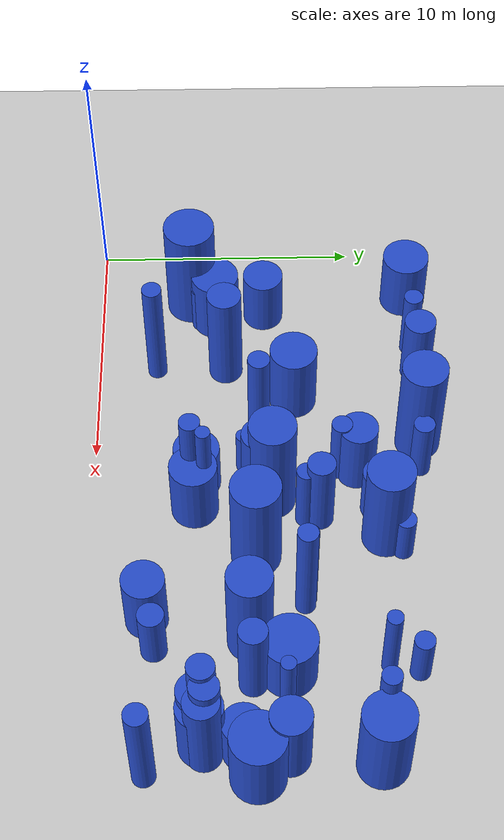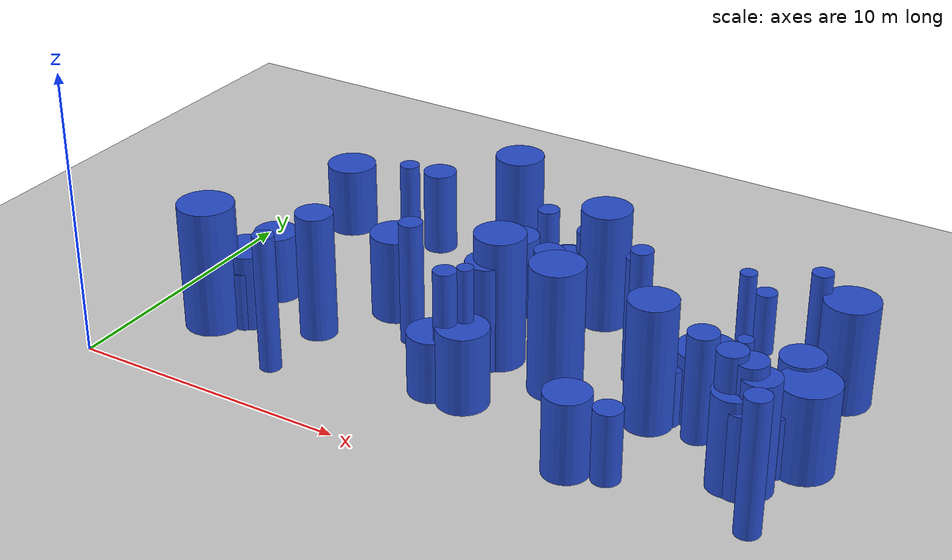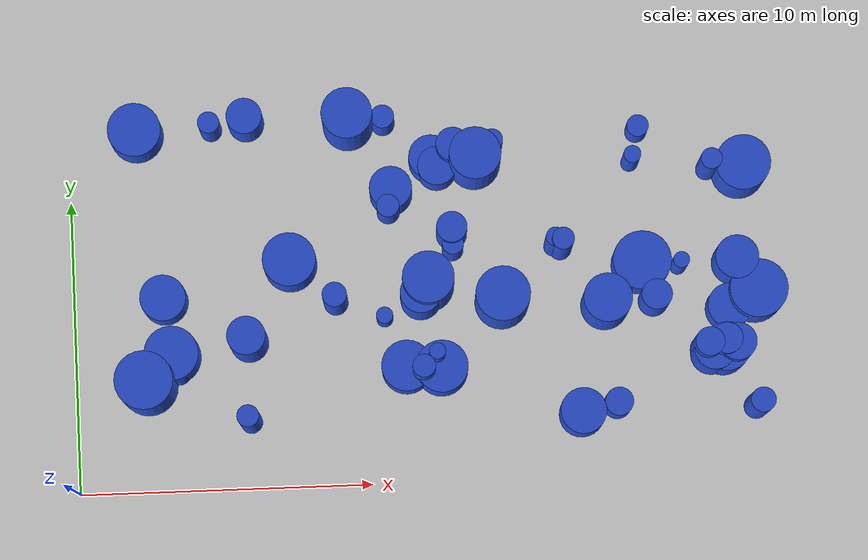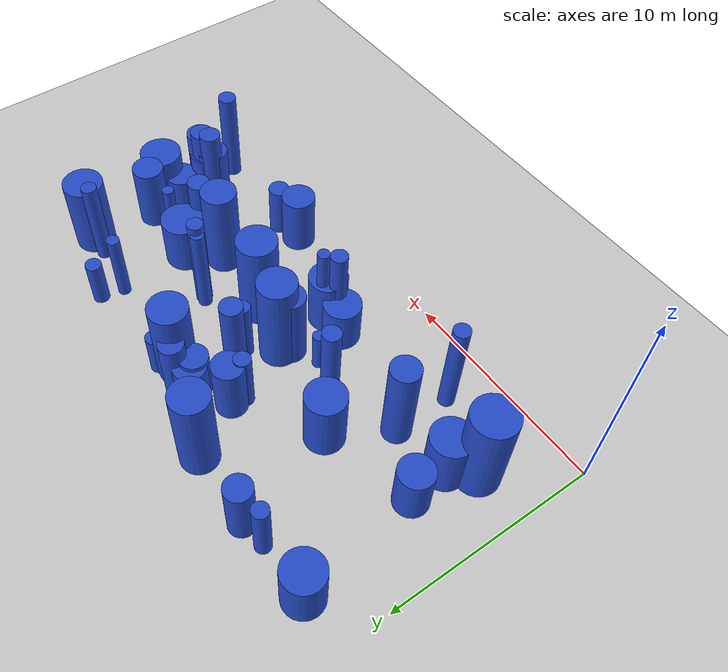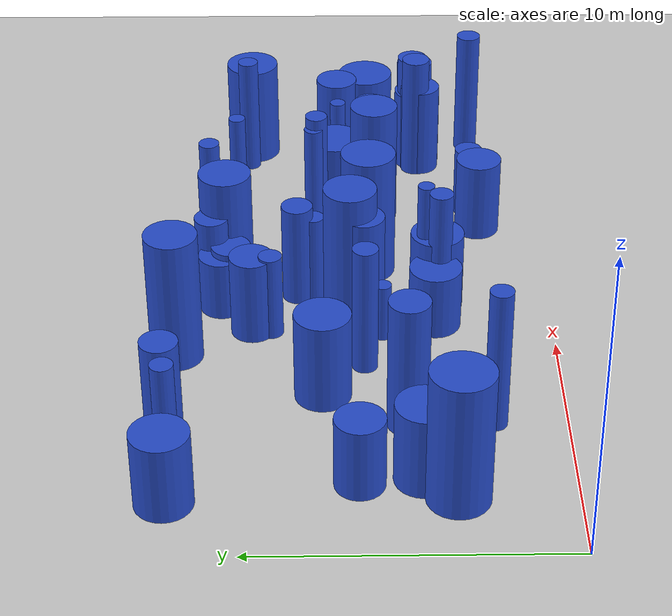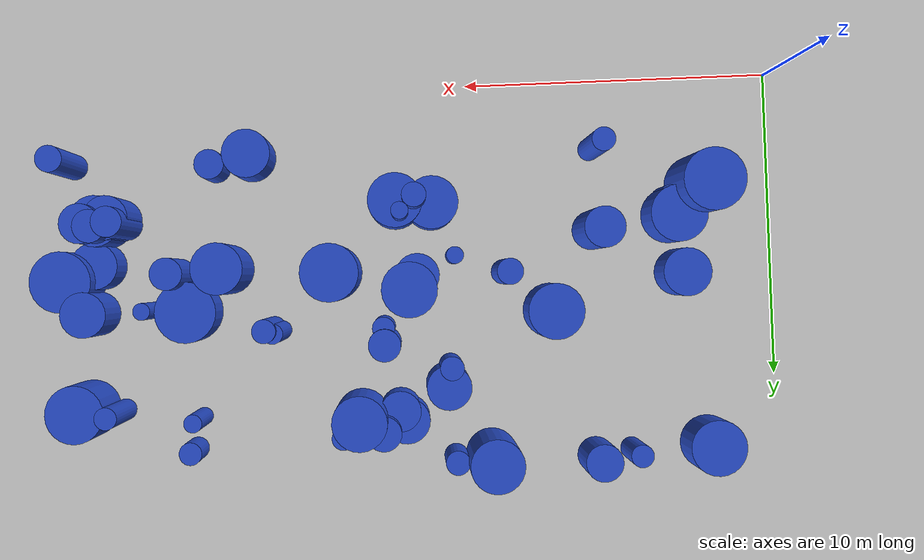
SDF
<sdf version="1.6">
 <world name="default">
  <model name="ground_plane">
   <static>1</static>
   <link name="link">
    <collision name="collision">
     <geometry><plane><normal>0 0 1</normal><size>100 100</size></plane></geometry>
     <surface><friction><ode><mu>100</mu><mu2>50</mu2></ode></friction></surface>
    </collision>
    <visual name="visual">
     <cast_shadows>0</cast_shadows>
     <geometry><plane><normal>0 0 1</normal><size>100 100</size></plane></geometry>
     <material>
      <script><uri>file://media/materials/scripts/gazebo.material</uri><name>Gazebo/Grey</name></script>
     </material>
    </visual>
   </link>
  </model>
  <model name="2">
   <static>0</static>
   <link name="link">
    <inertial>
     <mass>2</mass>
     <inertia><ixx>3.7496</ixx><ixy>0</ixy><ixz>0</ixz><iyy>3.7496</iyy><iyz>0</iyz><izz>0.179017</izz></inertia>
    </inertial>
    <collision name="collision">
     <geometry><cylinder><length>4.68621</length><radius>0.423104</radius></cylinder></geometry>
     <surface><contact><collide_without_contact>1</collide_without_contact></contact></surface>
    </collision>
    <visual name="visual">
     <geometry><cylinder><length>4.68621</length><radius>0.423104</radius></cylinder></geometry>
     <material>
      <script><uri>file://media/materials/scripts/gazebo.material</uri><name>Gazebo/Blue</name></script>
     </material>
    </visual>
    <gravity>0</gravity>
   </link>
   <pose>23.1867 2.18453 2.3431 0 -0 0</pose>
  </model>
  <model name="4">
   <static>0</static>
   <link name="link">
    <inertial>
     <mass>2</mass>
     <inertia>
      <ixx>0.784851</ixx>
      <ixy>0</ixy>
      <ixz>0</ixz>
      <iyy>0.784851</iyy>
      <iyz>0</iyz>
      <izz>0.196081</izz>
     </inertia>
    </inertial>
    <collision name="collision">
     <geometry><cylinder><length>2.02999</length><radius>0.442811</radius></cylinder></geometry>
     <surface><contact><collide_without_contact>1</collide_without_contact></contact></surface>
    </collision>
    <visual name="visual">
     <geometry><cylinder><length>2.02999</length><radius>0.442811</radius></cylinder></geometry>
     <material>
      <script><uri>file://media/materials/scripts/gazebo.material</uri><name>Gazebo/Blue</name></script>
     </material>
    </visual>
    <gravity>0</gravity>
   </link>
   <pose>22.4216 3.87466 1.015 0 -0 0</pose>
  </model>
  <model name="8">
   <static>0</static>
   <link name="link">
    <inertial>
     <mass>2</mass>
     <inertia>
      <ixx>0.936811</ixx>
      <ixy>0</ixy>
      <ixz>0</ixz>
      <iyy>0.936811</iyy>
      <iyz>0</iyz>
      <izz>0.138882</izz>
     </inertia>
    </inertial>
    <collision name="collision">
     <geometry><cylinder><length>2.28128</length><radius>0.372668</radius></cylinder></geometry>
     <surface><contact><collide_without_contact>1</collide_without_contact></contact></surface>
    </collision>
    <visual name="visual">
     <geometry><cylinder><length>2.28128</length><radius>0.372668</radius></cylinder></geometry>
     <material>
      <script><uri>file://media/materials/scripts/gazebo.material</uri><name>Gazebo/Blue</name></script>
     </material>
    </visual>
    <gravity>0</gravity>
   </link>
   <pose>19.4248 11.7611 1.14064 0 -0 0</pose>
  </model>
  <model name="14">
   <static>0</static>
   <link name="link">
    <inertial>
     <mass>2</mass>
     <inertia><ixx>1.37401</ixx><ixy>0</ixy><ixz>0</ixz><iyy>1.37401</iyy><iyz>0</iyz><izz>0.143411</izz></inertia>
    </inertial>
    <collision name="collision">
     <geometry><cylinder><length>2.79532</length><radius>0.378697</radius></cylinder></geometry>
     <surface><contact><collide_without_contact>1</collide_without_contact></contact></surface>
    </collision>
    <visual name="visual">
     <geometry><cylinder><length>2.79532</length><radius>0.378697</radius></cylinder></geometry>
     <material>
      <script><uri>file://media/materials/scripts/gazebo.material</uri><name>Gazebo/Blue</name></script>
     </material>
    </visual>
    <gravity>0</gravity>
   </link>
   <pose>23.7113 6.20723 1.39766 0 -0 0</pose>
  </model>
  <model name="30">
   <static>0</static>
   <link name="link">
    <inertial>
     <mass>2</mass>
     <inertia><ixx>3.44762</ixx><ixy>0</ixy><ixz>0</ixz><iyy>3.44762</iyy><iyz>0</iyz><izz>0.103691</izz></inertia>
    </inertial>
    <collision name="collision">
     <geometry><cylinder><length>4.51383</length><radius>0.322011</radius></cylinder></geometry>
     <surface><contact><collide_without_contact>1</collide_without_contact></contact></surface>
    </collision>
    <visual name="visual">
     <geometry><cylinder><length>4.51383</length><radius>0.322011</radius></cylinder></geometry>
     <material>
      <script><uri>file://media/materials/scripts/gazebo.material</uri><name>Gazebo/Blue</name></script>
     </material>
    </visual>
    <gravity>0</gravity>
   </link>
   <pose>16.4467 7.91767 2.25692 0 -0 0</pose>
  </model>
  <model name="39">
   <static>0</static>
   <link name="link">
    <inertial>
     <mass>2</mass>
     <inertia><ixx>2.1303</ixx><ixy>0</ixy><ixz>0</ixz><iyy>2.1303</iyy><iyz>0</iyz><izz>0.504175</izz></inertia>
    </inertial>
    <collision name="collision">
     <geometry><cylinder><length>3.35697</length><radius>0.710052</radius></cylinder></geometry>
     <surface><contact><collide_without_contact>1</collide_without_contact></contact></surface>
    </collision>
    <visual name="visual">
     <geometry><cylinder><length>3.35697</length><radius>0.710052</radius></cylinder></geometry>
     <material>
      <script><uri>file://media/materials/scripts/gazebo.material</uri><name>Gazebo/Blue</name></script>
     </material>
    </visual>
    <gravity>0</gravity>
   </link>
   <pose>21.7132 4.03501 1.67849 0 -0 0</pose>
  </model>
  <model name="52">
   <static>0</static>
   <link name="link">
    <inertial>
     <mass>2</mass>
     <inertia><ixx>1.9861</ixx><ixy>0</ixy><ixz>0</ixz><iyy>1.9861</iyy><iyz>0</iyz><izz>0.542401</izz></inertia>
    </inertial>
    <collision name="collision">
     <geometry><cylinder><length>3.20771</length><radius>0.736479</radius></cylinder></geometry>
     <surface><contact><collide_without_contact>1</collide_without_contact></contact></surface>
    </collision>
    <visual name="visual">
     <geometry><cylinder><length>3.20771</length><radius>0.736479</radius></cylinder></geometry>
     <material>
      <script><uri>file://media/materials/scripts/gazebo.material</uri><name>Gazebo/Blue</name></script>
     </material>
    </visual>
    <gravity>0</gravity>
   </link>
   <pose>22.5768 7.11732 1.60386 0 -0 0</pose>
  </model>
  <model name="54">
   <static>0</static>
   <link name="link">
    <inertial>
     <mass>2</mass>
     <inertia>
      <ixx>0.855605</ixx>
      <ixy>0</ixy>
      <ixz>0</ixz>
      <iyy>0.855605</iyy>
      <iyz>0</iyz>
      <izz>0.167054</izz>
     </inertia>
    </inertial>
    <collision name="collision">
     <geometry><cylinder><length>2.15232</length><radius>0.408722</radius></cylinder></geometry>
     <surface><contact><collide_without_contact>1</collide_without_contact></contact></surface>
    </collision>
    <visual name="visual">
     <geometry><cylinder><length>2.15232</length><radius>0.408722</radius></cylinder></geometry>
     <material>
      <script><uri>file://media/materials/scripts/gazebo.material</uri><name>Gazebo/Blue</name></script>
     </material>
    </visual>
    <gravity>0</gravity>
   </link>
   <pose>3.50927 4.04848 1.07616 0 -0 0</pose>
  </model>
  <model name="56">
   <static>0</static>
   <link name="link">
    <inertial>
     <mass>2</mass>
     <inertia><ixx>3.96337</ixx><ixy>0</ixy><ixz>0</ixz><iyy>3.96337</iyy><iyz>0</iyz><izz>0.741021</izz></inertia>
    </inertial>
    <collision name="collision">
     <geometry><cylinder><length>4.64297</length><radius>0.860826</radius></cylinder></geometry>
     <surface><contact><collide_without_contact>1</collide_without_contact></contact></surface>
    </collision>
    <visual name="visual">
     <geometry><cylinder><length>4.64297</length><radius>0.860826</radius></cylinder></geometry>
     <material>
      <script><uri>file://media/materials/scripts/gazebo.material</uri><name>Gazebo/Blue</name></script>
     </material>
    </visual>
    <gravity>0</gravity>
   </link>
   <pose>9.58124 12.331 2.32149 0 -0 0</pose>
  </model>
  <model name="81">
   <static>0</static>
   <link name="link">
    <inertial>
     <mass>2</mass>
     <inertia><ixx>2.74723</ixx><ixy>0</ixy><ixz>0</ixz><iyy>2.74723</iyy><iyz>0</iyz><izz>0.869014</izz></inertia>
    </inertial>
    <collision name="collision">
     <geometry><cylinder><length>3.72509</length><radius>0.932209</radius></cylinder></geometry>
     <surface><contact><collide_without_contact>1</collide_without_contact></contact></surface>
    </collision>
    <visual name="visual">
     <geometry><cylinder><length>3.72509</length><radius>0.932209</radius></cylinder></geometry>
     <material>
      <script><uri>file://media/materials/scripts/gazebo.material</uri><name>Gazebo/Blue</name></script>
     </material>
    </visual>
    <gravity>0</gravity>
   </link>
   <pose>22.8803 10.2598 1.86255 0 -0 0</pose>
  </model>
  <model name="83">
   <static>0</static>
   <link name="link">
    <inertial>
     <mass>2</mass>
     <inertia><ixx>1.69403</ixx><ixy>0</ixy><ixz>0</ixz><iyy>1.69403</iyy><iyz>0</iyz><izz>0.134634</izz></inertia>
    </inertial>
    <collision name="collision">
     <geometry><cylinder><length>3.12414</length><radius>0.366925</radius></cylinder></geometry>
     <surface><contact><collide_without_contact>1</collide_without_contact></contact></surface>
    </collision>
    <visual name="visual">
     <geometry><cylinder><length>3.12414</length><radius>0.366925</radius></cylinder></geometry>
     <material>
      <script><uri>file://media/materials/scripts/gazebo.material</uri><name>Gazebo/Blue</name></script>
     </material>
    </visual>
    <gravity>0</gravity>
   </link>
   <pose>4.88645 12.3275 1.56207 0 -0 0</pose>
  </model>
  <model name="92">
   <static>0</static>
   <link name="link">
    <inertial>
     <mass>2</mass>
     <inertia><ixx>4.14606</ixx><ixy>0</ixy><ixz>0</ixz><iyy>4.14606</iyy><iyz>0</iyz><izz>0.139804</izz></inertia>
    </inertial>
    <collision name="collision">
     <geometry><cylinder><length>4.9454</length><radius>0.373904</radius></cylinder></geometry>
     <surface><contact><collide_without_contact>1</collide_without_contact></contact></surface>
    </collision>
    <visual name="visual">
     <geometry><cylinder><length>4.9454</length><radius>0.373904</radius></cylinder></geometry>
     <material>
      <script><uri>file://media/materials/scripts/gazebo.material</uri><name>Gazebo/Blue</name></script>
     </material>
    </visual>
    <gravity>0</gravity>
   </link>
   <pose>5.92605 2.27303 2.4727 0 -0 0</pose>
  </model>
  <model name="113">
   <static>0</static>
   <link name="link">
    <inertial>
     <mass>2</mass>
     <inertia>
      <ixx>0.757629</ixx>
      <ixy>0</ixy>
      <ixz>0</ixz>
      <iyy>0.757629</iyy>
      <iyz>0</iyz>
      <izz>0.168603</izz>
     </inertia>
    </inertial>
    <collision name="collision">
     <geometry><cylinder><length>2.00997</length><radius>0.410614</radius></cylinder></geometry>
     <surface><contact><collide_without_contact>1</collide_without_contact></contact></surface>
    </collision>
    <visual name="visual">
     <geometry><cylinder><length>2.00997</length><radius>0.410614</radius></cylinder></geometry>
     <material>
      <script><uri>file://media/materials/scripts/gazebo.material</uri><name>Gazebo/Blue</name></script>
     </material>
    </visual>
    <gravity>0</gravity>
   </link>
   <pose>18.6159 6.21219 1.00498 0 -0 0</pose>
  </model>
  <model name="116">
   <static>0</static>
   <link name="link">
    <inertial>
     <mass>2</mass>
     <inertia><ixx>1.82778</ixx><ixy>0</ixy><ixz>0</ixz><iyy>1.82778</iyy><iyz>0</iyz><izz>0.687072</izz></inertia>
    </inertial>
    <collision name="collision">
     <geometry><cylinder><length>2.9842</length><radius>0.828898</radius></cylinder></geometry>
     <surface><contact><collide_without_contact>1</collide_without_contact></contact></surface>
    </collision>
    <visual name="visual">
     <geometry><cylinder><length>2.9842</length><radius>0.828898</radius></cylinder></geometry>
     <material>
      <script><uri>file://media/materials/scripts/gazebo.material</uri><name>Gazebo/Blue</name></script>
     </material>
    </visual>
    <gravity>0</gravity>
   </link>
   <pose>22.1262 4.11813 1.4921 0 -0 0</pose>
  </model>
  <model name="129">
   <static>0</static>
   <link name="link">
    <inertial>
     <mass>2</mass>
     <inertia><ixx>1.71504</ixx><ixy>0</ixy><ixz>0</ixz><iyy>1.71504</iyy><iyz>0</iyz><izz>0.857109</izz></inertia>
    </inertial>
    <collision name="collision">
     <geometry><cylinder><length>2.7783</length><radius>0.925802</radius></cylinder></geometry>
     <surface><contact><collide_without_contact>1</collide_without_contact></contact></surface>
    </collision>
    <visual name="visual">
     <geometry><cylinder><length>2.7783</length><radius>0.925802</radius></cylinder></geometry>
     <material>
      <script><uri>file://media/materials/scripts/gazebo.material</uri><name>Gazebo/Blue</name></script>
     </material>
    </visual>
    <gravity>0</gravity>
   </link>
   <pose>3.35246 4.58719 1.38915 0 -0 0</pose>
  </model>
  <model name="135">
   <static>0</static>
   <link name="link">
    <inertial>
     <mass>2</mass>
     <inertia><ixx>1.19633</ixx><ixy>0</ixy><ixz>0</ixz><iyy>1.19633</iyy><iyz>0</iyz><izz>0.751827</izz></inertia>
    </inertial>
    <collision name="collision">
     <geometry><cylinder><length>2.21867</length><radius>0.867079</radius></cylinder></geometry>
     <surface><contact><collide_without_contact>1</collide_without_contact></contact></surface>
    </collision>
    <visual name="visual">
     <geometry><cylinder><length>2.21867</length><radius>0.867079</radius></cylinder></geometry>
     <material>
      <script><uri>file://media/materials/scripts/gazebo.material</uri><name>Gazebo/Blue</name></script>
     </material>
    </visual>
    <gravity>0</gravity>
   </link>
   <pose>11.3003 3.90964 1.10934 0 -0 0</pose>
  </model>
  <model name="137">
   <static>0</static>
   <link name="link">
    <inertial>
     <mass>2</mass>
     <inertia><ixx>3.97567</ixx><ixy>0</ixy><ixz>0</ixz><iyy>3.97567</iyy><iyz>0</iyz><izz>0.855594</izz></inertia>
    </inertial>
    <collision name="collision">
     <geometry><cylinder><length>4.61381</length><radius>0.924983</radius></cylinder></geometry>
     <surface><contact><collide_without_contact>1</collide_without_contact></contact></surface>
    </collision>
    <visual name="visual">
     <geometry><cylinder><length>4.61381</length><radius>0.924983</radius></cylinder></geometry>
     <material>
      <script><uri>file://media/materials/scripts/gazebo.material</uri><name>Gazebo/Blue</name></script>
     </material>
    </visual>
    <gravity>0</gravity>
   </link>
   <pose>14.6148 6.07332 2.3069 0 -0 0</pose>
  </model>
  <model name="165">
   <static>0</static>
   <link name="link">
    <inertial>
     <mass>2</mass>
     <inertia><ixx>1.52389</ixx><ixy>0</ixy><ixz>0</ixz><iyy>1.52389</iyy><iyz>0</iyz><izz>0.993919</izz></inertia>
    </inertial>
    <collision name="collision">
     <geometry><cylinder><length>2.48225</length><radius>0.996955</radius></cylinder></geometry>
     <surface><contact><collide_without_contact>1</collide_without_contact></contact></surface>
    </collision>
    <visual name="visual">
     <geometry><cylinder><length>2.48225</length><radius>0.996955</radius></cylinder></geometry>
     <material>
      <script><uri>file://media/materials/scripts/gazebo.material</uri><name>Gazebo/Blue</name></script>
     </material>
    </visual>
    <gravity>0</gravity>
   </link>
   <pose>19.3985 7.17138 1.24113 0 -0 0</pose>
  </model>
  <model name="171">
   <static>0</static>
   <link name="link">
    <inertial>
     <mass>2</mass>
     <inertia><ixx>4.13126</ixx><ixy>0</ixy><ixz>0</ixz><iyy>4.13126</iyy><iyz>0</iyz><izz>0.77287</izz></inertia>
    </inertial>
    <collision name="collision">
     <geometry><cylinder><length>4.74014</length><radius>0.87913</radius></cylinder></geometry>
     <surface><contact><collide_without_contact>1</collide_without_contact></contact></surface>
    </collision>
    <visual name="visual">
     <geometry><cylinder><length>4.74014</length><radius>0.87913</radius></cylinder></geometry>
     <material>
      <script><uri>file://media/materials/scripts/gazebo.material</uri><name>Gazebo/Blue</name></script>
     </material>
    </visual>
    <gravity>0</gravity>
   </link>
   <pose>12.1266 6.70582 2.37007 0 -0 0</pose>
  </model>
  <model name="177">
   <static>0</static>
   <link name="link">
    <inertial>
     <mass>2</mass>
     <inertia><ixx>1.69614</ixx><ixy>0</ixy><ixz>0</ixz><iyy>1.69614</iyy><iyz>0</iyz><izz>0.787847</izz></inertia>
    </inertial>
    <collision name="collision">
     <geometry><cylinder><length>2.79523</length><radius>0.887607</radius></cylinder></geometry>
     <surface><contact><collide_without_contact>1</collide_without_contact></contact></surface>
    </collision>
    <visual name="visual">
     <geometry><cylinder><length>2.79523</length><radius>0.887607</radius></cylinder></geometry>
     <material>
      <script><uri>file://media/materials/scripts/gazebo.material</uri><name>Gazebo/Blue</name></script>
     </material>
    </visual>
    <gravity>0</gravity>
   </link>
   <pose>12.4885 3.81219 1.39762 0 -0 0</pose>
  </model>
  <model name="178">
   <static>0</static>
   <link name="link">
    <inertial>
     <mass>2</mass>
     <inertia><ixx>1.41536</ixx><ixy>0</ixy><ixz>0</ixz><iyy>1.41536</iyy><iyz>0</iyz><izz>0.157154</izz></inertia>
    </inertial>
    <collision name="collision">
     <geometry><cylinder><length>2.83208</length><radius>0.396426</radius></cylinder></geometry>
     <surface><contact><collide_without_contact>1</collide_without_contact></contact></surface>
    </collision>
    <visual name="visual">
     <geometry><cylinder><length>2.83208</length><radius>0.396426</radius></cylinder></geometry>
     <material>
      <script><uri>file://media/materials/scripts/gazebo.material</uri><name>Gazebo/Blue</name></script>
     </material>
    </visual>
    <gravity>0</gravity>
   </link>
   <pose>10.7741 12.3415 1.41604 0 -0 0</pose>
  </model>
  <model name="188">
   <static>0</static>
   <link name="link">
    <inertial>
     <mass>2</mass>
     <inertia><ixx>3.07218</ixx><ixy>0</ixy><ixz>0</ixz><iyy>3.07218</iyy><iyz>0</iyz><izz>0.1</izz></inertia>
    </inertial>
    <collision name="collision">
     <geometry><cylinder><length>4.25829</length><radius>0.316228</radius></cylinder></geometry>
     <surface><contact><collide_without_contact>1</collide_without_contact></contact></surface>
    </collision>
    <visual name="visual">
     <geometry><cylinder><length>4.25829</length><radius>0.316228</radius></cylinder></geometry>
     <material>
      <script><uri>file://media/materials/scripts/gazebo.material</uri><name>Gazebo/Blue</name></script>
     </material>
    </visual>
    <gravity>0</gravity>
   </link>
   <pose>2.37631 4.11587 2.12915 0 -0 0</pose>
  </model>
  <model name="195">
   <static>0</static>
   <link name="link">
    <inertial>
     <mass>2</mass>
     <inertia><ixx>2.00888</ixx><ixy>0</ixy><ixz>0</ixz><iyy>2.00888</iyy><iyz>0</iyz><izz>0.820959</izz></inertia>
    </inertial>
    <collision name="collision">
     <geometry><cylinder><length>3.09684</length><radius>0.906068</radius></cylinder></geometry>
     <surface><contact><collide_without_contact>1</collide_without_contact></contact></surface>
    </collision>
    <visual name="visual">
     <geometry><cylinder><length>3.09684</length><radius>0.906068</radius></cylinder></geometry>
     <material>
      <script><uri>file://media/materials/scripts/gazebo.material</uri><name>Gazebo/Blue</name></script>
     </material>
    </visual>
    <gravity>0</gravity>
   </link>
   <pose>7.4454 7.59452 1.54842 0 -0 0</pose>
  </model>
  <model name="196">
   <static>0</static>
   <link name="link">
    <inertial>
     <mass>2</mass>
     <inertia><ixx>4.0546</ixx><ixy>0</ixy><ixz>0</ixz><iyy>4.0546</iyy><iyz>0</iyz><izz>0.14116</izz></inertia>
    </inertial>
    <collision name="collision">
     <geometry><cylinder><length>4.88919</length><radius>0.375713</radius></cylinder></geometry>
     <surface><contact><collide_without_contact>1</collide_without_contact></contact></surface>
    </collision>
    <visual name="visual">
     <geometry><cylinder><length>4.88919</length><radius>0.375713</radius></cylinder></geometry>
     <material>
      <script><uri>file://media/materials/scripts/gazebo.material</uri><name>Gazebo/Blue</name></script>
     </material>
    </visual>
    <gravity>0</gravity>
   </link>
   <pose>16.6931 7.82171 2.44459 0 -0 0</pose>
  </model>
  <model name="205">
   <static>0</static>
   <link name="link">
    <inertial>
     <mass>2</mass>
     <inertia>
      <ixx>3.70464</ixx>
      <ixy>0</ixy>
      <ixz>0</ixz>
      <iyy>3.70464</iyy>
      <iyz>0</iyz>
      <izz>0.0765261</izz>
     </inertia>
    </inertial>
    <collision name="collision">
     <geometry><cylinder><length>4.69023</length><radius>0.276634</radius></cylinder></geometry>
     <surface><contact><collide_without_contact>1</collide_without_contact></contact></surface>
    </collision>
    <visual name="visual">
     <geometry><cylinder><length>4.69023</length><radius>0.276634</radius></cylinder></geometry>
     <material>
      <script><uri>file://media/materials/scripts/gazebo.material</uri><name>Gazebo/Blue</name></script>
     </material>
    </visual>
    <gravity>0</gravity>
   </link>
   <pose>12.3437 4.21975 2.34511 0 -0 0</pose>
  </model>
  <model name="211">
   <static>0</static>
   <link name="link">
    <inertial>
     <mass>2</mass>
     <inertia><ixx>1.6601</ixx><ixy>0</ixy><ixz>0</ixz><iyy>1.6601</iyy><iyz>0</iyz><izz>0.609505</izz></inertia>
    </inertial>
    <collision name="collision">
     <geometry><cylinder><length>2.85168</length><radius>0.780708</radius></cylinder></geometry>
     <surface><contact><collide_without_contact>1</collide_without_contact></contact></surface>
    </collision>
    <visual name="visual">
     <geometry><cylinder><length>2.85168</length><radius>0.780708</radius></cylinder></geometry>
     <material>
      <script><uri>file://media/materials/scripts/gazebo.material</uri><name>Gazebo/Blue</name></script>
     </material>
    </visual>
    <gravity>0</gravity>
   </link>
   <pose>17.2131 2.13057 1.42584 0 -0 0</pose>
  </model>
  <model name="219">
   <static>0</static>
   <link name="link">
    <inertial>
     <mass>2</mass>
     <inertia><ixx>2.71545</ixx><ixy>0</ixy><ixz>0</ixz><iyy>2.71545</iyy><iyz>0</iyz><izz>0.491469</izz></inertia>
    </inertial>
    <collision name="collision">
     <geometry><cylinder><length>3.84945</length><radius>0.701049</radius></cylinder></geometry>
     <surface><contact><collide_without_contact>1</collide_without_contact></contact></surface>
    </collision>
    <visual name="visual">
     <geometry><cylinder><length>3.84945</length><radius>0.701049</radius></cylinder></geometry>
     <material>
      <script><uri>file://media/materials/scripts/gazebo.material</uri><name>Gazebo/Blue</name></script>
     </material>
    </visual>
    <gravity>0</gravity>
   </link>
   <pose>11.8594 6.2673 1.92473 0 -0 0</pose>
  </model>
  <model name="221">
   <static>0</static>
   <link name="link">
    <inertial>
     <mass>2</mass>
     <inertia><ixx>1.71833</ixx><ixy>0</ixy><ixz>0</ixz><iyy>1.71833</iyy><iyz>0</iyz><izz>0.326372</izz></inertia>
    </inertial>
    <collision name="collision">
     <geometry><cylinder><length>3.05464</length><radius>0.57129</radius></cylinder></geometry>
     <surface><contact><collide_without_contact>1</collide_without_contact></contact></surface>
    </collision>
    <visual name="visual">
     <geometry><cylinder><length>3.05464</length><radius>0.57129</radius></cylinder></geometry>
     <material>
      <script><uri>file://media/materials/scripts/gazebo.material</uri><name>Gazebo/Blue</name></script>
     </material>
    </visual>
    <gravity>0</gravity>
   </link>
   <pose>13.1178 11.3008 1.52732 0 -0 0</pose>
  </model>
  <model name="243">
   <static>0</static>
   <link name="link">
    <inertial>
     <mass>2</mass>
     <inertia><ixx>1.00337</ixx><ixy>0</ixy><ixz>0</ixz><iyy>1.00337</iyy><iyz>0</iyz><izz>0.563019</izz></inertia>
    </inertial>
    <collision name="collision">
     <geometry><cylinder><length>2.08114</length><radius>0.750346</radius></cylinder></geometry>
     <surface><contact><collide_without_contact>1</collide_without_contact></contact></surface>
    </collision>
    <visual name="visual">
     <geometry><cylinder><length>2.08114</length><radius>0.750346</radius></cylinder></geometry>
     <material>
      <script><uri>file://media/materials/scripts/gazebo.material</uri><name>Gazebo/Blue</name></script>
     </material>
    </visual>
    <gravity>0</gravity>
   </link>
   <pose>12.3611 10.9827 1.04057 0 -0 0</pose>
  </model>
  <model name="252">
   <static>0</static>
   <link name="link">
    <inertial>
     <mass>2</mass>
     <inertia><ixx>3.31079</ixx><ixy>0</ixy><ixz>0</ixz><iyy>3.31079</iyy><iyz>0</iyz><izz>0.279131</izz></inertia>
    </inertial>
    <collision name="collision">
     <geometry><cylinder><length>4.36203</length><radius>0.528329</radius></cylinder></geometry>
     <surface><contact><collide_without_contact>1</collide_without_contact></contact></surface>
    </collision>
    <visual name="visual">
     <geometry><cylinder><length>4.36203</length><radius>0.528329</radius></cylinder></geometry>
     <material>
      <script><uri>file://media/materials/scripts/gazebo.material</uri><name>Gazebo/Blue</name></script>
     </material>
    </visual>
    <gravity>0</gravity>
   </link>
   <pose>22.0772 4.31567 2.18102 0 -0 0</pose>
  </model>
  <model name="259">
   <static>0</static>
   <link name="link">
    <inertial>
     <mass>2</mass>
     <inertia><ixx>2.5401</ixx><ixy>0</ixy><ixz>0</ixz><iyy>2.5401</iyy><iyz>0</iyz><izz>0.269318</izz></inertia>
    </inertial>
    <collision name="collision">
     <geometry><cylinder><length>3.79903</length><radius>0.518959</radius></cylinder></geometry>
     <surface><contact><collide_without_contact>1</collide_without_contact></contact></surface>
    </collision>
    <visual name="visual">
     <geometry><cylinder><length>3.79903</length><radius>0.518959</radius></cylinder></geometry>
     <material>
      <script><uri>file://media/materials/scripts/gazebo.material</uri><name>Gazebo/Blue</name></script>
     </material>
    </visual>
    <gravity>0</gravity>
   </link>
   <pose>19.803 5.91185 1.89951 0 -0 0</pose>
  </model>
  <model name="263">
   <static>0</static>
   <link name="link">
    <inertial>
     <mass>2</mass>
     <inertia>
      <ixx>0.822244</ixx>
      <ixy>0</ixy>
      <ixz>0</ixz>
      <iyy>0.822244</iyy>
      <iyz>0</iyz>
      <izz>0.141621</izz>
     </inertia>
    </inertial>
    <collision name="collision">
     <geometry><cylinder><length>2.12335</length><radius>0.376325</radius></cylinder></geometry>
     <surface><contact><collide_without_contact>1</collide_without_contact></contact></surface>
    </collision>
    <visual name="visual">
     <geometry><cylinder><length>2.12335</length><radius>0.376325</radius></cylinder></geometry>
     <material>
      <script><uri>file://media/materials/scripts/gazebo.material</uri><name>Gazebo/Blue</name></script>
     </material>
    </visual>
    <gravity>0</gravity>
   </link>
   <pose>14.4619 11.4778 1.06167 0 -0 0</pose>
  </model>
  <model name="271">
   <static>0</static>
   <link name="link">
    <inertial>
     <mass>2</mass>
     <inertia><ixx>3.70542</ixx><ixy>0</ixy><ixz>0</ixz><iyy>3.70542</iyy><iyz>0</iyz><izz>0.678433</izz></inertia>
    </inertial>
    <collision name="collision">
     <geometry><cylinder><length>4.49413</length><radius>0.823671</radius></cylinder></geometry>
     <surface><contact><collide_without_contact>1</collide_without_contact></contact></surface>
    </collision>
    <visual name="visual">
     <geometry><cylinder><length>4.49413</length><radius>0.823671</radius></cylinder></geometry>
     <material>
      <script><uri>file://media/materials/scripts/gazebo.material</uri><name>Gazebo/Blue</name></script>
     </material>
    </visual>
    <gravity>0</gravity>
   </link>
   <pose>18.1298 5.81574 2.24706 0 -0 0</pose>
  </model>
  <model name="287">
   <static>0</static>
   <link name="link">
    <inertial>
     <mass>2</mass>
     <inertia><ixx>3.44127</ixx><ixy>0</ixy><ixz>0</ixz><iyy>3.44127</iyy><iyz>0</iyz><izz>0.173602</izz></inertia>
    </inertial>
    <collision name="collision">
     <geometry><cylinder><length>4.48629</length><radius>0.416656</radius></cylinder></geometry>
     <surface><contact><collide_without_contact>1</collide_without_contact></contact></surface>
    </collision>
    <visual name="visual">
     <geometry><cylinder><length>4.48629</length><radius>0.416656</radius></cylinder></geometry>
     <material>
      <script><uri>file://media/materials/scripts/gazebo.material</uri><name>Gazebo/Blue</name></script>
     </material>
    </visual>
    <gravity>0</gravity>
   </link>
   <pose>8.95497 6.25491 2.24315 0 -0 0</pose>
  </model>
  <model name="288">
   <static>0</static>
   <link name="link">
    <inertial>
     <mass>2</mass>
     <inertia><ixx>1.69893</ixx><ixy>0</ixy><ixz>0</ixz><iyy>1.69893</iyy><iyz>0</iyz><izz>0.132663</izz></inertia>
    </inertial>
    <collision name="collision">
     <geometry><cylinder><length>3.12979</length><radius>0.364229</radius></cylinder></geometry>
     <surface><contact><collide_without_contact>1</collide_without_contact></contact></surface>
    </collision>
    <visual name="visual">
     <geometry><cylinder><length>3.12979</length><radius>0.364229</radius></cylinder></geometry>
     <material>
      <script><uri>file://media/materials/scripts/gazebo.material</uri><name>Gazebo/Blue</name></script>
     </material>
    </visual>
    <gravity>0</gravity>
   </link>
   <pose>13.0014 7.91632 1.5649 0 -0 0</pose>
  </model>
  <model name="299">
   <static>0</static>
   <link name="link">
    <inertial>
     <mass>2</mass>
     <inertia><ixx>1.69078</ixx><ixy>0</ixy><ixz>0</ixz><iyy>1.69078</iyy><iyz>0</iyz><izz>0.52543</izz></inertia>
    </inertial>
    <collision name="collision">
     <geometry><cylinder><length>2.92718</length><radius>0.724866</radius></cylinder></geometry>
     <surface><contact><collide_without_contact>1</collide_without_contact></contact></surface>
    </collision>
    <visual name="visual">
     <geometry><cylinder><length>2.92718</length><radius>0.724866</radius></cylinder></geometry>
     <material>
      <script><uri>file://media/materials/scripts/gazebo.material</uri><name>Gazebo/Blue</name></script>
     </material>
    </visual>
    <gravity>0</gravity>
   </link>
   <pose>10.9658 9.91271 1.46359 0 -0 0</pose>
  </model>
  <model name="307">
   <static>0</static>
   <link name="link">
    <inertial>
     <mass>2</mass>
     <inertia><ixx>2.83759</ixx><ixy>0</ixy><ixz>0</ixz><iyy>2.83759</iyy><iyz>0</iyz><izz>0.406114</izz></inertia>
    </inertial>
    <collision name="collision">
     <geometry><cylinder><length>3.97583</length><radius>0.637271</radius></cylinder></geometry>
     <surface><contact><collide_without_contact>1</collide_without_contact></contact></surface>
    </collision>
    <visual name="visual">
     <geometry><cylinder><length>3.97583</length><radius>0.637271</radius></cylinder></geometry>
     <material>
      <script><uri>file://media/materials/scripts/gazebo.material</uri><name>Gazebo/Blue</name></script>
     </material>
    </visual>
    <gravity>0</gravity>
   </link>
   <pose>22.4526 4.21384 1.98791 0 -0 0</pose>
  </model>
  <model name="315">
   <static>0</static>
   <link name="link">
    <inertial>
     <mass>2</mass>
     <inertia><ixx>1.76797</ixx><ixy>0</ixy><ixz>0</ixz><iyy>1.76797</iyy><iyz>0</iyz><izz>0.367786</izz></inertia>
    </inertial>
    <collision name="collision">
     <geometry><cylinder><length>3.08293</length><radius>0.606453</radius></cylinder></geometry>
     <surface><contact><collide_without_contact>1</collide_without_contact></contact></surface>
    </collision>
    <visual name="visual">
     <geometry><cylinder><length>3.08293</length><radius>0.606453</radius></cylinder></geometry>
     <material>
      <script><uri>file://media/materials/scripts/gazebo.material</uri><name>Gazebo/Blue</name></script>
     </material>
    </visual>
    <gravity>0</gravity>
   </link>
   <pose>6.09512 12.5094 1.54147 0 -0 0</pose>
  </model>
  <model name="346">
   <static>0</static>
   <link name="link">
    <inertial>
     <mass>2</mass>
     <inertia><ixx>1.57697</ixx><ixy>0</ixy><ixz>0</ixz><iyy>1.57697</iyy><iyz>0</iyz><izz>0.150463</izz></inertia>
    </inertial>
    <collision name="collision">
     <geometry><cylinder><length>3.00174</length><radius>0.387896</radius></cylinder></geometry>
     <surface><contact><collide_without_contact>1</collide_without_contact></contact></surface>
    </collision>
    <visual name="visual">
     <geometry><cylinder><length>3.00174</length><radius>0.387896</radius></cylinder></geometry>
     <material>
      <script><uri>file://media/materials/scripts/gazebo.material</uri><name>Gazebo/Blue</name></script>
     </material>
    </visual>
    <gravity>0</gravity>
   </link>
   <pose>10.8514 9.29516 1.50087 0 -0 0</pose>
  </model>
  <model name="352">
   <static>0</static>
   <link name="link">
    <inertial>
     <mass>2</mass>
     <inertia><ixx>3.22052</ixx><ixy>0</ixy><ixz>0</ixz><iyy>3.22052</iyy><iyz>0</iyz><izz>0.128067</izz></inertia>
    </inertial>
    <collision name="collision">
     <geometry><cylinder><length>4.35189</length><radius>0.357864</radius></cylinder></geometry>
     <surface><contact><collide_without_contact>1</collide_without_contact></contact></surface>
    </collision>
    <visual name="visual">
     <geometry><cylinder><length>4.35189</length><radius>0.357864</radius></cylinder></geometry>
     <material>
      <script><uri>file://media/materials/scripts/gazebo.material</uri><name>Gazebo/Blue</name></script>
     </material>
    </visual>
    <gravity>0</gravity>
   </link>
   <pose>21.79 10.3705 2.17594 0 -0 0</pose>
  </model>
  <model name="355">
   <static>0</static>
   <link name="link">
    <inertial>
     <mass>2</mass>
     <inertia><ixx>1.31898</ixx><ixy>0</ixy><ixz>0</ixz><iyy>1.31898</iyy><iyz>0</iyz><izz>0.614107</izz></inertia>
    </inertial>
    <collision name="collision">
     <geometry><cylinder><length>2.46406</length><radius>0.78365</radius></cylinder></geometry>
     <surface><contact><collide_without_contact>1</collide_without_contact></contact></surface>
    </collision>
    <visual name="visual">
     <geometry><cylinder><length>2.46406</length><radius>0.78365</radius></cylinder></geometry>
     <material>
      <script><uri>file://media/materials/scripts/gazebo.material</uri><name>Gazebo/Blue</name></script>
     </material>
    </visual>
    <gravity>0</gravity>
   </link>
   <pose>3.11758 6.49397 1.23203 0 -0 0</pose>
  </model>
  <model name="361">
   <static>0</static>
   <link name="link">
    <inertial>
     <mass>2</mass>
     <inertia>
      <ixx>0.72223</ixx>
      <ixy>0</ixy>
      <ixz>0</ixz>
      <iyy>0.72223</iyy>
      <iyz>0</iyz>
      <izz>0.0806747</izz>
     </inertia>
    </inertial>
    <collision name="collision">
     <geometry><cylinder><length>2.02271</length><radius>0.284033</radius></cylinder></geometry>
     <surface><contact><collide_without_contact>1</collide_without_contact></contact></surface>
    </collision>
    <visual name="visual">
     <geometry><cylinder><length>2.02271</length><radius>0.284033</radius></cylinder></geometry>
     <material>
      <script><uri>file://media/materials/scripts/gazebo.material</uri><name>Gazebo/Blue</name></script>
     </material>
    </visual>
    <gravity>0</gravity>
   </link>
   <pose>10.6037 5.65257 1.01135 0 -0 0</pose>
  </model>
  <model name="371">
   <static>0</static>
   <link name="link">
    <inertial>
     <mass>2</mass>
     <inertia><ixx>1.19954</ixx><ixy>0</ixy><ixz>0</ixz><iyy>1.19954</iyy><iyz>0</iyz><izz>0.23239</izz></inertia>
    </inertial>
    <collision name="collision">
     <geometry><cylinder><length>2.54953</length><radius>0.482069</radius></cylinder></geometry>
     <surface><contact><collide_without_contact>1</collide_without_contact></contact></surface>
    </collision>
    <visual name="visual">
     <geometry><cylinder><length>2.54953</length><radius>0.482069</radius></cylinder></geometry>
     <material>
      <script><uri>file://media/materials/scripts/gazebo.material</uri><name>Gazebo/Blue</name></script>
     </material>
    </visual>
    <gravity>0</gravity>
   </link>
   <pose>18.439 2.41267 1.27476 0 -0 0</pose>
  </model>
  <model name="393">
   <static>0</static>
   <link name="link">
    <inertial>
     <mass>2</mass>
     <inertia><ixx>4.02221</ixx><ixy>0</ixy><ixz>0</ixz><iyy>4.02221</iyy><iyz>0</iyz><izz>0.981569</izz></inertia>
    </inertial>
    <collision name="collision">
     <geometry><cylinder><length>4.6031</length><radius>0.990741</radius></cylinder></geometry>
     <surface><contact><collide_without_contact>1</collide_without_contact></contact></surface>
    </collision>
    <visual name="visual">
     <geometry><cylinder><length>4.6031</length><radius>0.990741</radius></cylinder></geometry>
     <material>
      <script><uri>file://media/materials/scripts/gazebo.material</uri><name>Gazebo/Blue</name></script>
     </material>
    </visual>
    <gravity>0</gravity>
   </link>
   <pose>2.46581 3.61553 2.30155 0 -0 0</pose>
  </model>
  <model name="405">
   <static>0</static>
   <link name="link">
    <inertial>
     <mass>2</mass>
     <inertia><ixx>3.71318</ixx><ixy>0</ixy><ixz>0</ixz><iyy>3.71318</iyy><iyz>0</iyz><izz>0.15249</izz></inertia>
    </inertial>
    <collision name="collision">
     <geometry><cylinder><length>4.67136</length><radius>0.390499</radius></cylinder></geometry>
     <surface><contact><collide_without_contact>1</collide_without_contact></contact></surface>
    </collision>
    <visual name="visual">
     <geometry><cylinder><length>4.67136</length><radius>0.390499</radius></cylinder></geometry>
     <material>
      <script><uri>file://media/materials/scripts/gazebo.material</uri><name>Gazebo/Blue</name></script>
     </material>
    </visual>
    <gravity>0</gravity>
   </link>
   <pose>11.88 3.74405 2.33568 0 -0 0</pose>
  </model>
  <model name="410">
   <static>0</static>
   <link name="link">
    <inertial>
     <mass>2</mass>
     <inertia>
      <ixx>1.78498</ixx>
      <ixy>0</ixy>
      <ixz>0</ixz>
      <iyy>1.78498</iyy>
      <iyz>0</iyz>
      <izz>0.0762309</izz>
     </inertia>
    </inertial>
    <collision name="collision">
     <geometry><cylinder><length>3.23747</length><radius>0.276099</radius></cylinder></geometry>
     <surface><contact><collide_without_contact>1</collide_without_contact></contact></surface>
    </collision>
    <visual name="visual">
     <geometry><cylinder><length>3.23747</length><radius>0.276099</radius></cylinder></geometry>
     <material>
      <script><uri>file://media/materials/scripts/gazebo.material</uri><name>Gazebo/Blue</name></script>
     </material>
    </visual>
    <gravity>0</gravity>
   </link>
   <pose>20.6938 7.07813 1.61873 0 -0 0</pose>
  </model>
  <model name="412">
   <static>0</static>
   <link name="link">
    <inertial>
     <mass>2</mass>
     <inertia><ixx>2.0249</ixx><ixy>0</ixy><ixz>0</ixz><iyy>2.0249</iyy><iyz>0</iyz><izz>0.086012</izz></inertia>
    </inertial>
    <collision name="collision">
     <geometry><cylinder><length>3.44839</length><radius>0.293278</radius></cylinder></geometry>
     <surface><contact><collide_without_contact>1</collide_without_contact></contact></surface>
    </collision>
    <visual name="visual">
     <geometry><cylinder><length>3.44839</length><radius>0.293278</radius></cylinder></geometry>
     <material>
      <script><uri>file://media/materials/scripts/gazebo.material</uri><name>Gazebo/Blue</name></script>
     </material>
    </visual>
    <gravity>0</gravity>
   </link>
   <pose>19.1695 10.6944 1.7242 0 -0 0</pose>
  </model>
  <model name="414">
   <static>0</static>
   <link name="link">
    <inertial>
     <mass>2</mass>
     <inertia><ixx>3.72265</ixx><ixy>0</ixy><ixz>0</ixz><iyy>3.72265</iyy><iyz>0</iyz><izz>0.426662</izz></inertia>
    </inertial>
    <collision name="collision">
     <geometry><cylinder><length>4.58868</length><radius>0.653194</radius></cylinder></geometry>
     <surface><contact><collide_without_contact>1</collide_without_contact></contact></surface>
    </collision>
    <visual name="visual">
     <geometry><cylinder><length>4.58868</length><radius>0.653194</radius></cylinder></geometry>
     <material>
      <script><uri>file://media/materials/scripts/gazebo.material</uri><name>Gazebo/Blue</name></script>
     </material>
    </visual>
    <gravity>0</gravity>
   </link>
   <pose>5.94967 4.98249 2.29434 0 -0 0</pose>
  </model>
  <model name="419">
   <static>0</static>
   <link name="link">
    <inertial>
     <mass>2</mass>
     <inertia><ixx>3.50624</ixx><ixy>0</ixy><ixz>0</ixz><iyy>3.50624</iyy><iyz>0</iyz><izz>0.778182</izz></inertia>
    </inertial>
    <collision name="collision">
     <geometry><cylinder><length>4.32469</length><radius>0.882146</radius></cylinder></geometry>
     <surface><contact><collide_without_contact>1</collide_without_contact></contact></surface>
    </collision>
    <visual name="visual">
     <geometry><cylinder><length>4.32469</length><radius>0.882146</radius></cylinder></geometry>
     <material>
      <script><uri>file://media/materials/scripts/gazebo.material</uri><name>Gazebo/Blue</name></script>
     </material>
    </visual>
    <gravity>0</gravity>
   </link>
   <pose>13.8538 10.8545 2.16234 0 -0 0</pose>
  </model>
  <model name="423">
   <static>0</static>
   <link name="link">
    <inertial>
     <mass>2</mass>
     <inertia><ixx>1.10112</ixx><ixy>0</ixy><ixz>0</ixz><iyy>1.10112</iyy><iyz>0</iyz><izz>0.438211</izz></inertia>
    </inertial>
    <collision name="collision">
     <geometry><cylinder><length>2.30045</length><radius>0.661975</radius></cylinder></geometry>
     <surface><contact><collide_without_contact>1</collide_without_contact></contact></surface>
    </collision>
    <visual name="visual">
     <geometry><cylinder><length>2.30045</length><radius>0.661975</radius></cylinder></geometry>
     <material>
      <script><uri>file://media/materials/scripts/gazebo.material</uri><name>Gazebo/Blue</name></script>
     </material>
    </visual>
    <gravity>0</gravity>
   </link>
   <pose>12.5614 10.6522 1.15023 0 -0 0</pose>
  </model>
  <model name="435">
   <static>0</static>
   <link name="link">
    <inertial>
     <mass>2</mass>
     <inertia><ixx>3.61597</ixx><ixy>0</ixy><ixz>0</ixz><iyy>3.61597</iyy><iyz>0</iyz><izz>0.240313</izz></inertia>
    </inertial>
    <collision name="collision">
     <geometry><cylinder><length>4.57983</length><radius>0.490217</radius></cylinder></geometry>
     <surface><contact><collide_without_contact>1</collide_without_contact></contact></surface>
    </collision>
    <visual name="visual">
     <geometry><cylinder><length>4.57983</length><radius>0.490217</radius></cylinder></geometry>
     <material>
      <script><uri>file://media/materials/scripts/gazebo.material</uri><name>Gazebo/Blue</name></script>
     </material>
    </visual>
    <gravity>0</gravity>
   </link>
   <pose>21.49 4.20918 2.28992 0 -0 0</pose>
  </model>
  <model name="444">
   <static>0</static>
   <link name="link">
    <inertial>
     <mass>2</mass>
     <inertia><ixx>1.53829</ixx><ixy>0</ixy><ixz>0</ixz><iyy>1.53829</iyy><iyz>0</iyz><izz>0.821993</izz></inertia>
    </inertial>
    <collision name="collision">
     <geometry><cylinder><length>2.60072</length><radius>0.906639</radius></cylinder></geometry>
     <surface><contact><collide_without_contact>1</collide_without_contact></contact></surface>
    </collision>
    <visual name="visual">
     <geometry><cylinder><length>2.60072</length><radius>0.906639</radius></cylinder></geometry>
     <material>
      <script><uri>file://media/materials/scripts/gazebo.material</uri><name>Gazebo/Blue</name></script>
     </material>
    </visual>
    <gravity>0</gravity>
   </link>
   <pose>2.34124 12.2251 1.30036 0 -0 0</pose>
  </model>
  <model name="447">
   <static>0</static>
   <link name="link">
    <inertial>
     <mass>2</mass>
     <inertia><ixx>1.0731</ixx><ixy>0</ixy><ixz>0</ixz><iyy>1.0731</iyy><iyz>0</iyz><izz>0.581561</izz></inertia>
    </inertial>
    <collision name="collision">
     <geometry><cylinder><length>2.16654</length><radius>0.762601</radius></cylinder></geometry>
     <surface><contact><collide_without_contact>1</collide_without_contact></contact></surface>
    </collision>
    <visual name="visual">
     <geometry><cylinder><length>2.16654</length><radius>0.762601</radius></cylinder></geometry>
     <material>
      <script><uri>file://media/materials/scripts/gazebo.material</uri><name>Gazebo/Blue</name></script>
     </material>
    </visual>
    <gravity>0</gravity>
   </link>
   <pose>22.3307 5.55548 1.08327 0 -0 0</pose>
  </model>
  <model name="457">
   <static>0</static>
   <link name="link">
    <inertial>
     <mass>2</mass>
     <inertia><ixx>2.08916</ixx><ixy>0</ixy><ixz>0</ixz><iyy>2.08916</iyy><iyz>0</iyz><izz>0.976455</izz></inertia>
    </inertial>
    <collision name="collision">
     <geometry><cylinder><length>3.09929</length><radius>0.988158</radius></cylinder></geometry>
     <surface><contact><collide_without_contact>1</collide_without_contact></contact></surface>
    </collision>
    <visual name="visual">
     <geometry><cylinder><length>3.09929</length><radius>0.988158</radius></cylinder></geometry>
     <material>
      <script><uri>file://media/materials/scripts/gazebo.material</uri><name>Gazebo/Blue</name></script>
     </material>
    </visual>
    <gravity>0</gravity>
   </link>
   <pose>23.2785 6.03841 1.54964 0 -0 0</pose>
  </model>
  <model name="496">
   <static>0</static>
   <link name="link">
    <inertial>
     <mass>2</mass>
     <inertia><ixx>2.25942</ixx><ixy>0</ixy><ixz>0</ixz><iyy>2.25942</iyy><iyz>0</iyz><izz>0.273115</izz></inertia>
    </inertial>
    <collision name="collision">
     <geometry><cylinder><length>3.56892</length><radius>0.522604</radius></cylinder></geometry>
     <surface><contact><collide_without_contact>1</collide_without_contact></contact></surface>
    </collision>
    <visual name="visual">
     <geometry><cylinder><length>3.56892</length><radius>0.522604</radius></cylinder></geometry>
     <material>
      <script><uri>file://media/materials/scripts/gazebo.material</uri><name>Gazebo/Blue</name></script>
     </material>
    </visual>
    <gravity>0</gravity>
   </link>
   <pose>12.9838 8.45301 1.78446 0 -0 0</pose>
  </model>
 </world>
</sdf>
